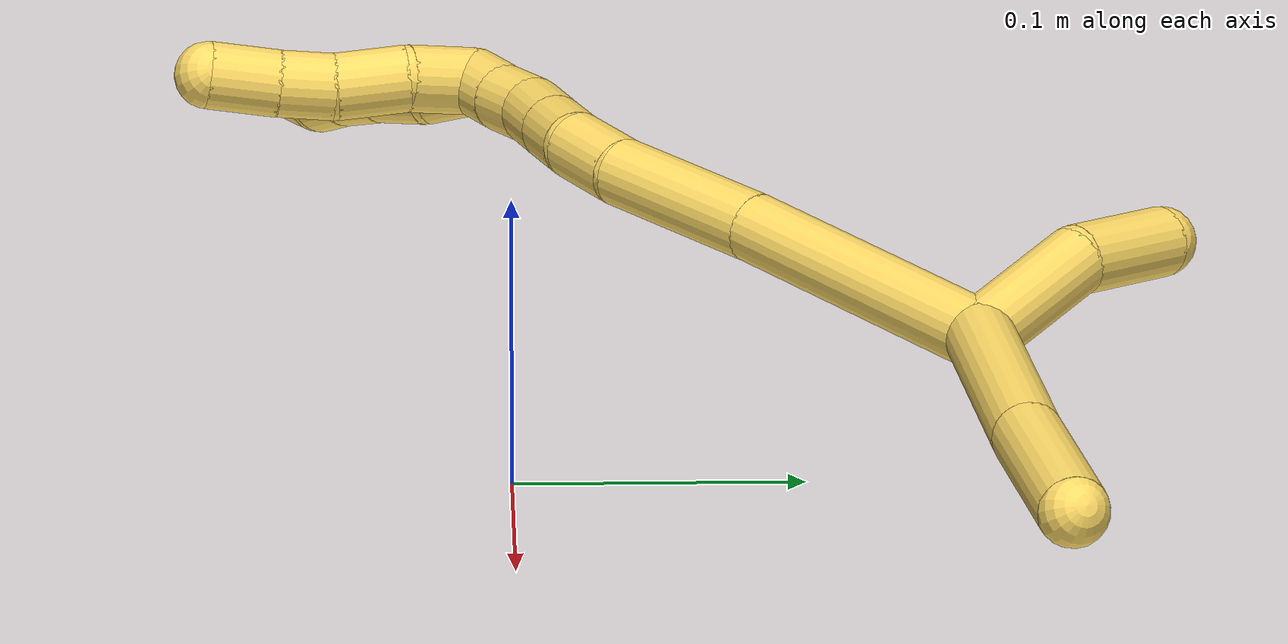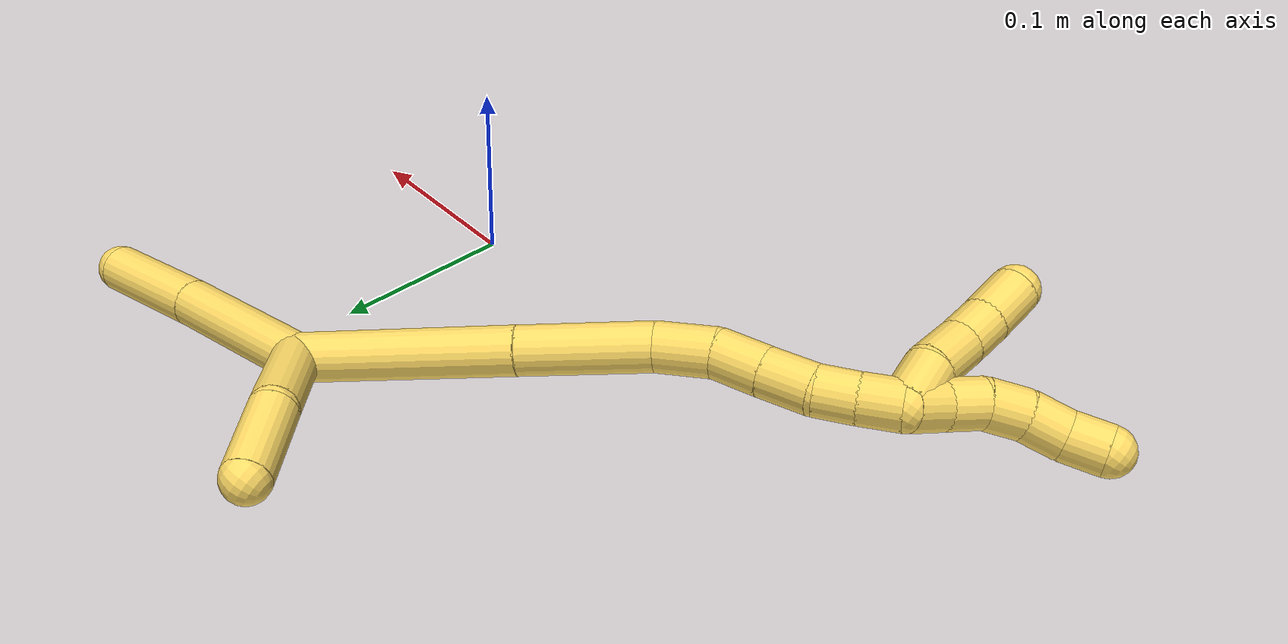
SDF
<sdf version="1.7">
 <world name="default">
  <model name="5">
   <static>0</static>
   <link name="5">
    <collision name="collision-cylinder-e_1_2_8">
     <pose>0.019233 -0.01486 0.035669 0.394747 0.461831 0.093964</pose>
     <geometry><cylinder><radius>0.0125</radius><length>0.086326</length></cylinder></geometry>
     <surface>
      <friction><ode><mu>1.16</mu><mu2>1.16</mu2><slip1>0</slip1><slip2>0</slip2></ode></friction>
      <contact><ode><kp>1e+06</kp><kd>1</kd><max_vel>0</max_vel><min_depth>0.001</min_depth></ode></contact>
     </surface>
    </collision>
    <visual name="visual-cylinder-e_1_2_8">
     <pose>0.019233 -0.01486 0.035669 0.394747 0.461831 0.093964</pose>
     <geometry><cylinder><radius>0.0125</radius><length>0.086326</length></cylinder></geometry>
     <material><ambient>1 0.858824 0.4 1</ambient></material>
    </visual>
    <collision name="collision-cylinder-e_2_8_6">
     <pose>0.052824 -0.039255 0.098107 0.342155 0.467866 0.082292</pose>
     <geometry><cylinder><radius>0.0125</radius><length>0.063674</length></cylinder></geometry>
     <surface>
      <friction><ode><mu>1.16</mu><mu2>1.16</mu2><slip1>0</slip1><slip2>0</slip2></ode></friction>
      <contact><ode><kp>1e+06</kp><kd>1</kd><max_vel>0</max_vel><min_depth>0.001</min_depth></ode></contact>
     </surface>
    </collision>
    <visual name="visual-cylinder-e_2_8_6">
     <pose>0.052824 -0.039255 0.098107 0.342155 0.467866 0.082292</pose>
     <geometry><cylinder><radius>0.0125</radius><length>0.063674</length></cylinder></geometry>
     <material><ambient>1 0.858824 0.4 1</ambient></material>
    </visual>
    <collision name="collision-cylinder-e_1_2_9">
     <pose>-0.005894 0.026395 -0.008429 -1.87991 -0.209594 0.286045</pose>
     <geometry><cylinder><radius>0.0125</radius><length>0.056657</length></cylinder></geometry>
     <surface>
      <friction><ode><mu>1.16</mu><mu2>1.16</mu2><slip1>0</slip1><slip2>0</slip2></ode></friction>
      <contact><ode><kp>1e+06</kp><kd>1</kd><max_vel>0</max_vel><min_depth>0.001</min_depth></ode></contact>
     </surface>
    </collision>
    <visual name="visual-cylinder-e_1_2_9">
     <pose>-0.005894 0.026395 -0.008429 -1.87991 -0.209594 0.286045</pose>
     <geometry><cylinder><radius>0.0125</radius><length>0.056657</length></cylinder></geometry>
     <material><ambient>1 0.858824 0.4 1</ambient></material>
    </visual>
    <collision name="collision-cylinder-e_2_9_5">
     <pose>-0.009245 0.072949 -0.024398 -1.92868 0.117621 -0.169357</pose>
     <geometry><cylinder><radius>0.0125</radius><length>0.043343</length></cylinder></geometry>
     <surface>
      <friction><ode><mu>1.16</mu><mu2>1.16</mu2><slip1>0</slip1><slip2>0</slip2></ode></friction>
      <contact><ode><kp>1e+06</kp><kd>1</kd><max_vel>0</max_vel><min_depth>0.001</min_depth></ode></contact>
     </surface>
    </collision>
    <visual name="visual-cylinder-e_2_9_5">
     <pose>-0.009245 0.072949 -0.024398 -1.92868 0.117621 -0.169357</pose>
     <geometry><cylinder><radius>0.0125</radius><length>0.043343</length></cylinder></geometry>
     <material><ambient>1 0.858824 0.4 1</ambient></material>
    </visual>
    <collision name="collision-cylinder-e_1_2_10">
     <pose>-0.033231 -0.012606 -0.043531 2.85972 -0.6327 -2.32362</pose>
     <geometry><cylinder><radius>0.0125</radius><length>0.112394</length></cylinder></geometry>
     <surface>
      <friction><ode><mu>1.16</mu><mu2>1.16</mu2><slip1>0</slip1><slip2>0</slip2></ode></friction>
      <contact><ode><kp>1e+06</kp><kd>1</kd><max_vel>0</max_vel><min_depth>0.001</min_depth></ode></contact>
     </surface>
    </collision>
    <visual name="visual-cylinder-e_1_2_10">
     <pose>-0.033231 -0.012606 -0.043531 2.85972 -0.6327 -2.32362</pose>
     <geometry><cylinder><radius>0.0125</radius><length>0.112394</length></cylinder></geometry>
     <material><ambient>1 0.858824 0.4 1</ambient></material>
    </visual>
    <collision name="collision-cylinder-e_2_10_11">
     <pose>-0.085494 -0.033875 -0.11308 2.82018 -0.606709 -2.18589</pose>
     <geometry><cylinder><radius>0.0125</radius><length>0.066761</length></cylinder></geometry>
     <surface>
      <friction><ode><mu>1.16</mu><mu2>1.16</mu2><slip1>0</slip1><slip2>0</slip2></ode></friction>
      <contact><ode><kp>1e+06</kp><kd>1</kd><max_vel>0</max_vel><min_depth>0.001</min_depth></ode></contact>
     </surface>
    </collision>
    <visual name="visual-cylinder-e_2_10_11">
     <pose>-0.085494 -0.033875 -0.11308 2.82018 -0.606709 -2.18589</pose>
     <geometry><cylinder><radius>0.0125</radius><length>0.066761</length></cylinder></geometry>
     <material><ambient>1 0.858824 0.4 1</ambient></material>
    </visual>
    <collision name="collision-cylinder-e_3_11_12">
     <pose>-0.112588 -0.043667 -0.151517 3.05095 -0.573923 -2.83662</pose>
     <geometry><cylinder><radius>0.0125</radius><length>0.029696</length></cylinder></geometry>
     <surface>
      <friction><ode><mu>1.16</mu><mu2>1.16</mu2><slip1>0</slip1><slip2>0</slip2></ode></friction>
      <contact><ode><kp>1e+06</kp><kd>1</kd><max_vel>0</max_vel><min_depth>0.001</min_depth></ode></contact>
     </surface>
    </collision>
    <visual name="visual-cylinder-e_3_11_12">
     <pose>-0.112588 -0.043667 -0.151517 3.05095 -0.573923 -2.83662</pose>
     <geometry><cylinder><radius>0.0125</radius><length>0.029696</length></cylinder></geometry>
     <material><ambient>1 0.858824 0.4 1</ambient></material>
    </visual>
    <collision name="collision-cylinder-e_4_12_13">
     <pose>-0.125526 -0.042737 -0.175364 -2.96342 -0.397596 2.30691</pose>
     <geometry><cylinder><radius>0.0125</radius><length>0.025191</length></cylinder></geometry>
     <surface>
      <friction><ode><mu>1.16</mu><mu2>1.16</mu2><slip1>0</slip1><slip2>0</slip2></ode></friction>
      <contact><ode><kp>1e+06</kp><kd>1</kd><max_vel>0</max_vel><min_depth>0.001</min_depth></ode></contact>
     </surface>
    </collision>
    <visual name="visual-cylinder-e_4_12_13">
     <pose>-0.125526 -0.042737 -0.175364 -2.96342 -0.397596 2.30691</pose>
     <geometry><cylinder><radius>0.0125</radius><length>0.025191</length></cylinder></geometry>
     <material><ambient>1 0.858824 0.4 1</ambient></material>
    </visual>
    <collision name="collision-cylinder-e_5_13_14">
     <pose>-0.135494 -0.038711 -0.197963 -2.96718 -0.421921 2.36639</pose>
     <geometry><cylinder><radius>0.0125</radius><length>0.024864</length></cylinder></geometry>
     <surface>
      <friction><ode><mu>1.16</mu><mu2>1.16</mu2><slip1>0</slip1><slip2>0</slip2></ode></friction>
      <contact><ode><kp>1e+06</kp><kd>1</kd><max_vel>0</max_vel><min_depth>0.001</min_depth></ode></contact>
     </surface>
    </collision>
    <visual name="visual-cylinder-e_5_13_14">
     <pose>-0.135494 -0.038711 -0.197963 -2.96718 -0.421921 2.36639</pose>
     <geometry><cylinder><radius>0.0125</radius><length>0.024864</length></cylinder></geometry>
     <material><ambient>1 0.858824 0.4 1</ambient></material>
    </visual>
    <collision name="collision-cylinder-e_6_14_15">
     <pose>-0.145253 -0.037526 -0.218123 3.05472 -0.47734 -2.78804</pose>
     <geometry><cylinder><radius>0.0125</radius><length>0.02032</length></cylinder></geometry>
     <surface>
      <friction><ode><mu>1.16</mu><mu2>1.16</mu2><slip1>0</slip1><slip2>0</slip2></ode></friction>
      <contact><ode><kp>1e+06</kp><kd>1</kd><max_vel>0</max_vel><min_depth>0.001</min_depth></ode></contact>
     </surface>
    </collision>
    <visual name="visual-cylinder-e_6_14_15">
     <pose>-0.145253 -0.037526 -0.218123 3.05472 -0.47734 -2.78804</pose>
     <geometry><cylinder><radius>0.0125</radius><length>0.02032</length></cylinder></geometry>
     <material><ambient>1 0.858824 0.4 1</ambient></material>
    </visual>
    <collision name="collision-cylinder-e_7_15_1">
     <pose>-0.155245 -0.038784 -0.236019 3.08832 -0.53818 -2.94896</pose>
     <geometry><cylinder><radius>0.0125</radius><length>0.020774</length></cylinder></geometry>
     <surface>
      <friction><ode><mu>1.16</mu><mu2>1.16</mu2><slip1>0</slip1><slip2>0</slip2></ode></friction>
      <contact><ode><kp>1e+06</kp><kd>1</kd><max_vel>0</max_vel><min_depth>0.001</min_depth></ode></contact>
     </surface>
    </collision>
    <visual name="visual-cylinder-e_7_15_1">
     <pose>-0.155245 -0.038784 -0.236019 3.08832 -0.53818 -2.94896</pose>
     <geometry><cylinder><radius>0.0125</radius><length>0.020774</length></cylinder></geometry>
     <material><ambient>1 0.858824 0.4 1</ambient></material>
    </visual>
    <collision name="collision-cylinder-e_1_1_16">
     <pose>-0.162602 -0.046271 -0.251758 2.34322 -0.204696 -0.477661</pose>
     <geometry><cylinder><radius>0.0125</radius><length>0.02</length></cylinder></geometry>
     <surface>
      <friction><ode><mu>1.16</mu><mu2>1.16</mu2><slip1>0</slip1><slip2>0</slip2></ode></friction>
      <contact><ode><kp>1e+06</kp><kd>1</kd><max_vel>0</max_vel><min_depth>0.001</min_depth></ode></contact>
     </surface>
    </collision>
    <visual name="visual-cylinder-e_1_1_16">
     <pose>-0.162602 -0.046271 -0.251758 2.34322 -0.204696 -0.477661</pose>
     <geometry><cylinder><radius>0.0125</radius><length>0.02</length></cylinder></geometry>
     <material><ambient>1 0.858824 0.4 1</ambient></material>
    </visual>
    <collision name="collision-cylinder-e_2_16_17">
     <pose>-0.168509 -0.058608 -0.266117 2.52588 -0.397887 -1.13018</pose>
     <geometry><cylinder><radius>0.0125</radius><length>0.02</length></cylinder></geometry>
     <surface>
      <friction><ode><mu>1.16</mu><mu2>1.16</mu2><slip1>0</slip1><slip2>0</slip2></ode></friction>
      <contact><ode><kp>1e+06</kp><kd>1</kd><max_vel>0</max_vel><min_depth>0.001</min_depth></ode></contact>
     </surface>
    </collision>
    <visual name="visual-cylinder-e_2_16_17">
     <pose>-0.168509 -0.058608 -0.266117 2.52588 -0.397887 -1.13018</pose>
     <geometry><cylinder><radius>0.0125</radius><length>0.02</length></cylinder></geometry>
     <material><ambient>1 0.858824 0.4 1</ambient></material>
    </visual>
    <collision name="collision-cylinder-e_3_17_18">
     <pose>-0.174702 -0.067054 -0.282856 2.81495 -0.233971 -1.23902</pose>
     <geometry><cylinder><radius>0.0125</radius><length>0.02</length></cylinder></geometry>
     <surface>
      <friction><ode><mu>1.16</mu><mu2>1.16</mu2><slip1>0</slip1><slip2>0</slip2></ode></friction>
      <contact><ode><kp>1e+06</kp><kd>1</kd><max_vel>0</max_vel><min_depth>0.001</min_depth></ode></contact>
     </surface>
    </collision>
    <visual name="visual-cylinder-e_3_17_18">
     <pose>-0.174702 -0.067054 -0.282856 2.81495 -0.233971 -1.23902</pose>
     <geometry><cylinder><radius>0.0125</radius><length>0.02</length></cylinder></geometry>
     <material><ambient>1 0.858824 0.4 1</ambient></material>
    </visual>
    <collision name="collision-cylinder-e_4_18_19">
     <pose>-0.178233 -0.071355 -0.301925 3.02245 -0.121498 -1.59041</pose>
     <geometry><cylinder><radius>0.0125</radius><length>0.02</length></cylinder></geometry>
     <surface>
      <friction><ode><mu>1.16</mu><mu2>1.16</mu2><slip1>0</slip1><slip2>0</slip2></ode></friction>
      <contact><ode><kp>1e+06</kp><kd>1</kd><max_vel>0</max_vel><min_depth>0.001</min_depth></ode></contact>
     </surface>
    </collision>
    <visual name="visual-cylinder-e_4_18_19">
     <pose>-0.178233 -0.071355 -0.301925 3.02245 -0.121498 -1.59041</pose>
     <geometry><cylinder><radius>0.0125</radius><length>0.02</length></cylinder></geometry>
     <material><ambient>1 0.858824 0.4 1</ambient></material>
    </visual>
    <collision name="collision-cylinder-e_5_19_4">
     <pose>-0.183059 -0.071974 -0.321088 -3.08136 -0.369853 2.82226</pose>
     <geometry><cylinder><radius>0.0125</radius><length>0.02</length></cylinder></geometry>
     <surface>
      <friction><ode><mu>1.16</mu><mu2>1.16</mu2><slip1>0</slip1><slip2>0</slip2></ode></friction>
      <contact><ode><kp>1e+06</kp><kd>1</kd><max_vel>0</max_vel><min_depth>0.001</min_depth></ode></contact>
     </surface>
    </collision>
    <visual name="visual-cylinder-e_5_19_4">
     <pose>-0.183059 -0.071974 -0.321088 -3.08136 -0.369853 2.82226</pose>
     <geometry><cylinder><radius>0.0125</radius><length>0.02</length></cylinder></geometry>
     <material><ambient>1 0.858824 0.4 1</ambient></material>
    </visual>
    <collision name="collision-cylinder-e_1_1_20">
     <pose>-0.165547 -0.051261 -0.245101 1.58547 -0.393104 -0.398763</pose>
     <geometry><cylinder><radius>0.0125</radius><length>0.025989</length></cylinder></geometry>
     <surface>
      <friction><ode><mu>1.16</mu><mu2>1.16</mu2><slip1>0</slip1><slip2>0</slip2></ode></friction>
      <contact><ode><kp>1e+06</kp><kd>1</kd><max_vel>0</max_vel><min_depth>0.001</min_depth></ode></contact>
     </surface>
    </collision>
    <visual name="visual-cylinder-e_1_1_20">
     <pose>-0.165547 -0.051261 -0.245101 1.58547 -0.393104 -0.398763</pose>
     <geometry><cylinder><radius>0.0125</radius><length>0.025989</length></cylinder></geometry>
     <material><ambient>1 0.858824 0.4 1</ambient></material>
    </visual>
    <collision name="collision-cylinder-e_2_20_21">
     <pose>-0.174109 -0.07595 -0.248454 1.81616 -0.267535 -0.341491</pose>
     <geometry><cylinder><radius>0.0125</radius><length>0.027122</length></cylinder></geometry>
     <surface>
      <friction><ode><mu>1.16</mu><mu2>1.16</mu2><slip1>0</slip1><slip2>0</slip2></ode></friction>
      <contact><ode><kp>1e+06</kp><kd>1</kd><max_vel>0</max_vel><min_depth>0.001</min_depth></ode></contact>
     </surface>
    </collision>
    <visual name="visual-cylinder-e_2_20_21">
     <pose>-0.174109 -0.07595 -0.248454 1.81616 -0.267535 -0.341491</pose>
     <geometry><cylinder><radius>0.0125</radius><length>0.027122</length></cylinder></geometry>
     <material><ambient>1 0.858824 0.4 1</ambient></material>
    </visual>
    <collision name="collision-cylinder-e_3_21_22">
     <pose>-0.182152 -0.097761 -0.253764 1.80053 -0.444052 -0.554599</pose>
     <geometry><cylinder><radius>0.0125</radius><length>0.020753</length></cylinder></geometry>
     <surface>
      <friction><ode><mu>1.16</mu><mu2>1.16</mu2><slip1>0</slip1><slip2>0</slip2></ode></friction>
      <contact><ode><kp>1e+06</kp><kd>1</kd><max_vel>0</max_vel><min_depth>0.001</min_depth></ode></contact>
     </surface>
    </collision>
    <visual name="visual-cylinder-e_3_21_22">
     <pose>-0.182152 -0.097761 -0.253764 1.80053 -0.444052 -0.554599</pose>
     <geometry><cylinder><radius>0.0125</radius><length>0.020753</length></cylinder></geometry>
     <material><ambient>1 0.858824 0.4 1</ambient></material>
    </visual>
    <collision name="collision-cylinder-e_4_22_3">
     <pose>-0.192868 -0.118146 -0.258085 1.76255 -0.49942 -0.599945</pose>
     <geometry><cylinder><radius>0.0125</radius><length>0.026136</length></cylinder></geometry>
     <surface>
      <friction><ode><mu>1.16</mu><mu2>1.16</mu2><slip1>0</slip1><slip2>0</slip2></ode></friction>
      <contact><ode><kp>1e+06</kp><kd>1</kd><max_vel>0</max_vel><min_depth>0.001</min_depth></ode></contact>
     </surface>
    </collision>
    <visual name="visual-cylinder-e_4_22_3">
     <pose>-0.192868 -0.118146 -0.258085 1.76255 -0.49942 -0.599945</pose>
     <geometry><cylinder><radius>0.0125</radius><length>0.026136</length></cylinder></geometry>
     <material><ambient>1 0.858824 0.4 1</ambient></material>
    </visual>
    <collision name="collision-sphere-3">
     <pose>-0.199127 -0.129408 -0.260271 0 -0 0</pose>
     <geometry><sphere><radius>0.0125</radius></sphere></geometry>
     <surface>
      <friction><ode><mu>1.16</mu><mu2>1.16</mu2><slip1>0</slip1><slip2>0</slip2></ode></friction>
      <contact><ode><kp>1e+06</kp><kd>1</kd><max_vel>0</max_vel><min_depth>0.001</min_depth></ode></contact>
     </surface>
    </collision>
    <visual name="visual-sphere-3">
     <pose>-0.199127 -0.129408 -0.260271 0 -0 0</pose>
     <geometry><sphere><radius>0.0125</radius></sphere></geometry>
     <material><ambient>1 0.858824 0.4 1</ambient></material>
    </visual>
    <collision name="collision-sphere-22">
     <pose>-0.18661 -0.106885 -0.255898 0 -0 0</pose>
     <geometry><sphere><radius>0.0125</radius></sphere></geometry>
     <surface>
      <friction><ode><mu>1.16</mu><mu2>1.16</mu2><slip1>0</slip1><slip2>0</slip2></ode></friction>
      <contact><ode><kp>1e+06</kp><kd>1</kd><max_vel>0</max_vel><min_depth>0.001</min_depth></ode></contact>
     </surface>
    </collision>
    <visual name="visual-sphere-22">
     <pose>-0.18661 -0.106885 -0.255898 0 -0 0</pose>
     <geometry><sphere><radius>0.0125</radius></sphere></geometry>
     <material><ambient>1 0.858824 0.4 1</ambient></material>
    </visual>
    <collision name="collision-sphere-21">
     <pose>-0.177694 -0.088636 -0.251631 0 -0 0</pose>
     <geometry><sphere><radius>0.0125</radius></sphere></geometry>
     <surface>
      <friction><ode><mu>1.16</mu><mu2>1.16</mu2><slip1>0</slip1><slip2>0</slip2></ode></friction>
      <contact><ode><kp>1e+06</kp><kd>1</kd><max_vel>0</max_vel><min_depth>0.001</min_depth></ode></contact>
     </surface>
    </collision>
    <visual name="visual-sphere-21">
     <pose>-0.177694 -0.088636 -0.251631 0 -0 0</pose>
     <geometry><sphere><radius>0.0125</radius></sphere></geometry>
     <material><ambient>1 0.858824 0.4 1</ambient></material>
    </visual>
    <collision name="collision-sphere-20">
     <pose>-0.170524 -0.063263 -0.245277 0 -0 0</pose>
     <geometry><sphere><radius>0.0125</radius></sphere></geometry>
     <surface>
      <friction><ode><mu>1.16</mu><mu2>1.16</mu2><slip1>0</slip1><slip2>0</slip2></ode></friction>
      <contact><ode><kp>1e+06</kp><kd>1</kd><max_vel>0</max_vel><min_depth>0.001</min_depth></ode></contact>
     </surface>
    </collision>
    <visual name="visual-sphere-20">
     <pose>-0.170524 -0.063263 -0.245277 0 -0 0</pose>
     <geometry><sphere><radius>0.0125</radius></sphere></geometry>
     <material><ambient>1 0.858824 0.4 1</ambient></material>
    </visual>
    <collision name="collision-sphere-4">
     <pose>-0.186674 -0.071412 -0.330395 0 -0 0</pose>
     <geometry><sphere><radius>0.0125</radius></sphere></geometry>
     <surface>
      <friction><ode><mu>1.16</mu><mu2>1.16</mu2><slip1>0</slip1><slip2>0</slip2></ode></friction>
      <contact><ode><kp>1e+06</kp><kd>1</kd><max_vel>0</max_vel><min_depth>0.001</min_depth></ode></contact>
     </surface>
    </collision>
    <visual name="visual-sphere-4">
     <pose>-0.186674 -0.071412 -0.330395 0 -0 0</pose>
     <geometry><sphere><radius>0.0125</radius></sphere></geometry>
     <material><ambient>1 0.858824 0.4 1</ambient></material>
    </visual>
    <collision name="collision-sphere-10">
     <pose>-0.066461 -0.025212 -0.087061 0 -0 0</pose>
     <geometry><sphere><radius>0.0125</radius></sphere></geometry>
     <surface>
      <friction><ode><mu>1.16</mu><mu2>1.16</mu2><slip1>0</slip1><slip2>0</slip2></ode></friction>
      <contact><ode><kp>1e+06</kp><kd>1</kd><max_vel>0</max_vel><min_depth>0.001</min_depth></ode></contact>
     </surface>
    </collision>
    <visual name="visual-sphere-10">
     <pose>-0.066461 -0.025212 -0.087061 0 -0 0</pose>
     <geometry><sphere><radius>0.0125</radius></sphere></geometry>
     <material><ambient>1 0.858824 0.4 1</ambient></material>
    </visual>
    <collision name="collision-sphere-5">
     <pose>-0.006702 0.093107 -0.031937 0 -0 0</pose>
     <geometry><sphere><radius>0.0125</radius></sphere></geometry>
     <surface>
      <friction><ode><mu>1.16</mu><mu2>1.16</mu2><slip1>0</slip1><slip2>0</slip2></ode></friction>
      <contact><ode><kp>1e+06</kp><kd>1</kd><max_vel>0</max_vel><min_depth>0.001</min_depth></ode></contact>
     </surface>
    </collision>
    <visual name="visual-sphere-5">
     <pose>-0.006702 0.093107 -0.031937 0 -0 0</pose>
     <geometry><sphere><radius>0.0125</radius></sphere></geometry>
     <material><ambient>1 0.858824 0.4 1</ambient></material>
    </visual>
    <collision name="collision-sphere-6">
     <pose>0.067182 -0.048789 0.124876 0 -0 0</pose>
     <geometry><sphere><radius>0.0125</radius></sphere></geometry>
     <surface>
      <friction><ode><mu>1.16</mu><mu2>1.16</mu2><slip1>0</slip1><slip2>0</slip2></ode></friction>
      <contact><ode><kp>1e+06</kp><kd>1</kd><max_vel>0</max_vel><min_depth>0.001</min_depth></ode></contact>
     </surface>
    </collision>
    <visual name="visual-sphere-6">
     <pose>0.067182 -0.048789 0.124876 0 -0 0</pose>
     <geometry><sphere><radius>0.0125</radius></sphere></geometry>
     <material><ambient>1 0.858824 0.4 1</ambient></material>
    </visual>
    <collision name="collision-sphere-9">
     <pose>-0.011788 0.052791 -0.016859 0 -0 0</pose>
     <geometry><sphere><radius>0.0125</radius></sphere></geometry>
     <surface>
      <friction><ode><mu>1.16</mu><mu2>1.16</mu2><slip1>0</slip1><slip2>0</slip2></ode></friction>
      <contact><ode><kp>1e+06</kp><kd>1</kd><max_vel>0</max_vel><min_depth>0.001</min_depth></ode></contact>
     </surface>
    </collision>
    <visual name="visual-sphere-9">
     <pose>-0.011788 0.052791 -0.016859 0 -0 0</pose>
     <geometry><sphere><radius>0.0125</radius></sphere></geometry>
     <material><ambient>1 0.858824 0.4 1</ambient></material>
    </visual>
    <collision name="collision-sphere-2">
     <geometry><sphere><radius>0.0125</radius></sphere></geometry>
     <surface>
      <friction><ode><mu>1.16</mu><mu2>1.16</mu2><slip1>0</slip1><slip2>0</slip2></ode></friction>
      <contact><ode><kp>1e+06</kp><kd>1</kd><max_vel>0</max_vel><min_depth>0.001</min_depth></ode></contact>
     </surface>
    </collision>
    <visual name="visual-sphere-2">
     <geometry><sphere><radius>0.0125</radius></sphere></geometry>
     <material><ambient>1 0.858824 0.4 1</ambient></material>
    </visual>
    <collision name="collision-sphere-19">
     <pose>-0.179445 -0.072535 -0.311781 0 -0 0</pose>
     <geometry><sphere><radius>0.0125</radius></sphere></geometry>
     <surface>
      <friction><ode><mu>1.16</mu><mu2>1.16</mu2><slip1>0</slip1><slip2>0</slip2></ode></friction>
      <contact><ode><kp>1e+06</kp><kd>1</kd><max_vel>0</max_vel><min_depth>0.001</min_depth></ode></contact>
     </surface>
    </collision>
    <visual name="visual-sphere-19">
     <pose>-0.179445 -0.072535 -0.311781 0 -0 0</pose>
     <geometry><sphere><radius>0.0125</radius></sphere></geometry>
     <material><ambient>1 0.858824 0.4 1</ambient></material>
    </visual>
    <collision name="collision-sphere-8">
     <pose>0.038466 -0.029721 0.071339 0 -0 0</pose>
     <geometry><sphere><radius>0.0125</radius></sphere></geometry>
     <surface>
      <friction><ode><mu>1.16</mu><mu2>1.16</mu2><slip1>0</slip1><slip2>0</slip2></ode></friction>
      <contact><ode><kp>1e+06</kp><kd>1</kd><max_vel>0</max_vel><min_depth>0.001</min_depth></ode></contact>
     </surface>
    </collision>
    <visual name="visual-sphere-8">
     <pose>0.038466 -0.029721 0.071339 0 -0 0</pose>
     <geometry><sphere><radius>0.0125</radius></sphere></geometry>
     <material><ambient>1 0.858824 0.4 1</ambient></material>
    </visual>
    <collision name="collision-sphere-11">
     <pose>-0.104526 -0.042538 -0.139099 0 -0 0</pose>
     <geometry><sphere><radius>0.0125</radius></sphere></geometry>
     <surface>
      <friction><ode><mu>1.16</mu><mu2>1.16</mu2><slip1>0</slip1><slip2>0</slip2></ode></friction>
      <contact><ode><kp>1e+06</kp><kd>1</kd><max_vel>0</max_vel><min_depth>0.001</min_depth></ode></contact>
     </surface>
    </collision>
    <visual name="visual-sphere-11">
     <pose>-0.104526 -0.042538 -0.139099 0 -0 0</pose>
     <geometry><sphere><radius>0.0125</radius></sphere></geometry>
     <material><ambient>1 0.858824 0.4 1</ambient></material>
    </visual>
    <collision name="collision-sphere-12">
     <pose>-0.120649 -0.044796 -0.163935 0 -0 0</pose>
     <geometry><sphere><radius>0.0125</radius></sphere></geometry>
     <surface>
      <friction><ode><mu>1.16</mu><mu2>1.16</mu2><slip1>0</slip1><slip2>0</slip2></ode></friction>
      <contact><ode><kp>1e+06</kp><kd>1</kd><max_vel>0</max_vel><min_depth>0.001</min_depth></ode></contact>
     </surface>
    </collision>
    <visual name="visual-sphere-12">
     <pose>-0.120649 -0.044796 -0.163935 0 -0 0</pose>
     <geometry><sphere><radius>0.0125</radius></sphere></geometry>
     <material><ambient>1 0.858824 0.4 1</ambient></material>
    </visual>
    <collision name="collision-sphere-13">
     <pose>-0.130403 -0.040679 -0.186793 0 -0 0</pose>
     <geometry><sphere><radius>0.0125</radius></sphere></geometry>
     <surface>
      <friction><ode><mu>1.16</mu><mu2>1.16</mu2><slip1>0</slip1><slip2>0</slip2></ode></friction>
      <contact><ode><kp>1e+06</kp><kd>1</kd><max_vel>0</max_vel><min_depth>0.001</min_depth></ode></contact>
     </surface>
    </collision>
    <visual name="visual-sphere-13">
     <pose>-0.130403 -0.040679 -0.186793 0 -0 0</pose>
     <geometry><sphere><radius>0.0125</radius></sphere></geometry>
     <material><ambient>1 0.858824 0.4 1</ambient></material>
    </visual>
    <collision name="collision-sphere-14">
     <pose>-0.140585 -0.036743 -0.209132 0 -0 0</pose>
     <geometry><sphere><radius>0.0125</radius></sphere></geometry>
     <surface>
      <friction><ode><mu>1.16</mu><mu2>1.16</mu2><slip1>0</slip1><slip2>0</slip2></ode></friction>
      <contact><ode><kp>1e+06</kp><kd>1</kd><max_vel>0</max_vel><min_depth>0.001</min_depth></ode></contact>
     </surface>
    </collision>
    <visual name="visual-sphere-14">
     <pose>-0.140585 -0.036743 -0.209132 0 -0 0</pose>
     <geometry><sphere><radius>0.0125</radius></sphere></geometry>
     <material><ambient>1 0.858824 0.4 1</ambient></material>
    </visual>
    <collision name="collision-sphere-15">
     <pose>-0.149921 -0.038309 -0.227113 0 -0 0</pose>
     <geometry><sphere><radius>0.0125</radius></sphere></geometry>
     <surface>
      <friction><ode><mu>1.16</mu><mu2>1.16</mu2><slip1>0</slip1><slip2>0</slip2></ode></friction>
      <contact><ode><kp>1e+06</kp><kd>1</kd><max_vel>0</max_vel><min_depth>0.001</min_depth></ode></contact>
     </surface>
    </collision>
    <visual name="visual-sphere-15">
     <pose>-0.149921 -0.038309 -0.227113 0 -0 0</pose>
     <geometry><sphere><radius>0.0125</radius></sphere></geometry>
     <material><ambient>1 0.858824 0.4 1</ambient></material>
    </visual>
    <collision name="collision-sphere-1">
     <pose>-0.160569 -0.039259 -0.244925 0 -0 0</pose>
     <geometry><sphere><radius>0.0125</radius></sphere></geometry>
     <surface>
      <friction><ode><mu>1.16</mu><mu2>1.16</mu2><slip1>0</slip1><slip2>0</slip2></ode></friction>
      <contact><ode><kp>1e+06</kp><kd>1</kd><max_vel>0</max_vel><min_depth>0.001</min_depth></ode></contact>
     </surface>
    </collision>
    <visual name="visual-sphere-1">
     <pose>-0.160569 -0.039259 -0.244925 0 -0 0</pose>
     <geometry><sphere><radius>0.0125</radius></sphere></geometry>
     <material><ambient>1 0.858824 0.4 1</ambient></material>
    </visual>
    <collision name="collision-sphere-18">
     <pose>-0.177021 -0.070175 -0.292069 0 -0 0</pose>
     <geometry><sphere><radius>0.0125</radius></sphere></geometry>
     <surface>
      <friction><ode><mu>1.16</mu><mu2>1.16</mu2><slip1>0</slip1><slip2>0</slip2></ode></friction>
      <contact><ode><kp>1e+06</kp><kd>1</kd><max_vel>0</max_vel><min_depth>0.001</min_depth></ode></contact>
     </surface>
    </collision>
    <visual name="visual-sphere-18">
     <pose>-0.177021 -0.070175 -0.292069 0 -0 0</pose>
     <geometry><sphere><radius>0.0125</radius></sphere></geometry>
     <material><ambient>1 0.858824 0.4 1</ambient></material>
    </visual>
    <collision name="collision-sphere-16">
     <pose>-0.164634 -0.053284 -0.258591 0 -0 0</pose>
     <geometry><sphere><radius>0.0125</radius></sphere></geometry>
     <surface>
      <friction><ode><mu>1.16</mu><mu2>1.16</mu2><slip1>0</slip1><slip2>0</slip2></ode></friction>
      <contact><ode><kp>1e+06</kp><kd>1</kd><max_vel>0</max_vel><min_depth>0.001</min_depth></ode></contact>
     </surface>
    </collision>
    <visual name="visual-sphere-16">
     <pose>-0.164634 -0.053284 -0.258591 0 -0 0</pose>
     <geometry><sphere><radius>0.0125</radius></sphere></geometry>
     <material><ambient>1 0.858824 0.4 1</ambient></material>
    </visual>
    <collision name="collision-sphere-17">
     <pose>-0.172384 -0.063933 -0.273643 0 -0 0</pose>
     <geometry><sphere><radius>0.0125</radius></sphere></geometry>
     <surface>
      <friction><ode><mu>1.16</mu><mu2>1.16</mu2><slip1>0</slip1><slip2>0</slip2></ode></friction>
      <contact><ode><kp>1e+06</kp><kd>1</kd><max_vel>0</max_vel><min_depth>0.001</min_depth></ode></contact>
     </surface>
    </collision>
    <visual name="visual-sphere-17">
     <pose>-0.172384 -0.063933 -0.273643 0 -0 0</pose>
     <geometry><sphere><radius>0.0125</radius></sphere></geometry>
     <material><ambient>1 0.858824 0.4 1</ambient></material>
    </visual>
    <inertial>
     <pose>-0.07519 -0.030029 -0.10856 0 -0 0</pose>
     <mass>0.75</mass>
     <inertia><ixx>-8.4e-05</ixx><ixy>0</ixy><ixz>0</ixz><iyy>9.7e-05</iyy><iyz>0</iyz><izz>9.3e-05</izz></inertia>
    </inertial>
   </link>
   <pose>-0.051073 0.162173 0.037054 0.512051 1.08012 0.923157</pose>
  </model>
 </world>
</sdf>
